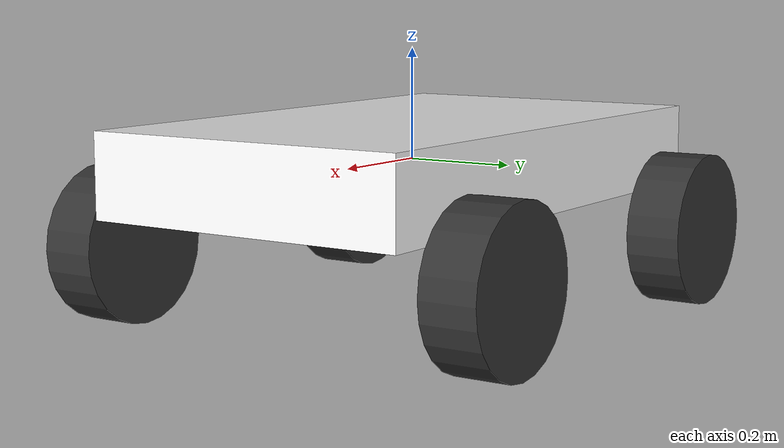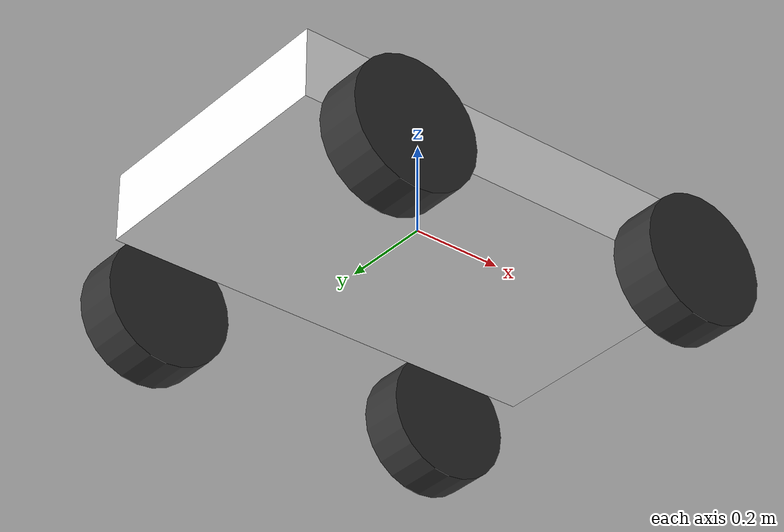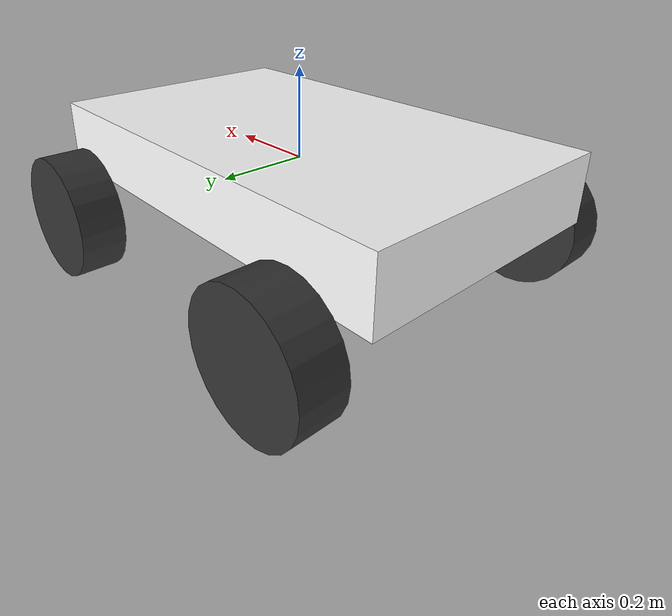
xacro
<?xml version="1.0"?>
<robot name="sam_bot" xmlns:xacro="http://ros.org/wiki/xacro">

  <!-- Includes -->
  <xacro:include filename="$(find hardware_navigation)/urdf/material.xacro" />
  <xacro:include filename="$(find hardware_navigation)/urdf/macros.xacro" />

  <!-- Base Properties -->
  <xacro:property name="base_width" value="0.6"/>
  <xacro:property name="base_length" value="1.0"/>
  <xacro:property name="base_height" value="0.15"/>
  <xacro:property name="base_mass" value="8"/>

  <!-- Wheel Properties -->
  <xacro:property name="wheel_radius" value="0.14"/>
  <xacro:property name="wheel_separation" value="0.6"/>
  <xacro:property name="wheel_width" value="0.1"/>
  <xacro:property name="wheel_mass" value="2"/>
  <xacro:property name="wheel_xoff" value="0.35"/>
  <xacro:property name="wheel_yoff" value="0.08"/>

  <!-- Robot Footprint -->
  <link name="base_footprint"/>

  <joint name="base_joint" type="fixed">
    <parent link="base_link"/>
    <child link="base_footprint"/>
    <origin xyz="0.0 0.0 ${-(wheel_radius + 0.06) + 0.005}" rpy="0 0 0"/>
  </joint>

  <!-- Robot Base -->
  <link name="base_link">
    <collision>
      <geometry>
        <box size="${base_length} ${base_width} ${base_height}"/>
      </geometry>
    </collision>
    <xacro:box_inertia m="${base_mass}" w="${base_width}" d="${base_length}" h="${base_height}"/>
    <visual>
      <geometry>
        <box size="${base_length} ${base_width} ${base_height}"/>
      </geometry>
      <material name="white">
        <color rgba="1.0 1.0 1.0 1.0"/>
      </material>
    </visual>
  </link>

  <!-- Mecanum Wheel Macro -->
  <xacro:macro name="wheel" params="prefix side x_reflect y_reflect">
    <link name="${prefix}${side}_wheel_link">
      <visual>
        <origin xyz="0 0 0" rpy="${pi/2} 0 0"/>
        <geometry>
          <cylinder radius="${wheel_radius}" length="${wheel_width}"/>
        </geometry>
        <material name="dark_gray">
          <color rgba="0.2 0.2 0.2 1.0"/>
        </material>
      </visual>

      <collision>
        <origin xyz="0 0 0" rpy="${pi/2} 0 0"/>
        <geometry>
          <cylinder radius="${wheel_radius}" length="${wheel_width}"/>
        </geometry>
      </collision>

      <inertial>
        <origin xyz="0 0 0" rpy="0 0 0"/>
        <mass value="${wheel_mass}"/>
        <inertia
          ixx="${(wheel_mass/12.0) * (3*wheel_radius*wheel_radius + wheel_width*wheel_width)}" ixy="0" ixz="0"
          iyy="${(wheel_mass/2.0) * (wheel_radius*wheel_radius)}" iyz="0"
          izz="${(wheel_mass/12.0) * (3*wheel_radius*wheel_radius + wheel_width*wheel_width)}"/>
      </inertial>
    </link>

    <joint name="${prefix}${side}_wheel_joint" type="continuous">
      <axis xyz="0 1 0"/>
      <parent link="base_link"/>
      <child link="${prefix}${side}_wheel_link"/>
      <origin xyz="${x_reflect * wheel_xoff} ${y_reflect * (wheel_separation / 2 + wheel_yoff)} ${-wheel_radius}" rpy="0 0 0"/>
    </joint>

    <gazebo reference="${prefix}${side}_wheel_link">
      <surface>
        <friction>
          <ode>
            <mu>1.0</mu>
            <mu2>0.0</mu2>
          </ode>
        </friction>
      </surface>
      <visual>
        <material>
          <ambient>0.2 0.2 0.2 1.0</ambient>
          <diffuse>0.2 0.2 0.2 1.0</diffuse>
          <specular>0.2 0.2 0.2 1.0</specular>
          <emissive>0.0 0.0 0.0 0.0</emissive>
        </material>
      </visual>
    </gazebo>
  </xacro:macro>

  <!-- Instantiate 4 Wheels -->
  <xacro:wheel prefix="" side="front_left"  x_reflect="1"  y_reflect="1"/>
  <xacro:wheel prefix="" side="front_right" x_reflect="1"  y_reflect="-1"/>
  <xacro:wheel prefix="" side="back_left"   x_reflect="-1" y_reflect="1"/>
  <xacro:wheel prefix="" side="back_right"  x_reflect="-1" y_reflect="-1"/>

</robot>

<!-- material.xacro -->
<robot>

  <material name="black">
    <color rgba="0.0 0.0 0.0 1.0"/>
  </material>

  <material name="white">
    <color rgba="1.0 1.0 1.0 1.0"/>
  </material>

  <material name="red">
    <color rgba="0.8 0.0 0.0 1.0"/>
  </material>

  <material name="blue">
    <color rgba="0.0 0.0 0.8 1.0"/>
  </material>

  <material name="green">
    <color rgba="0.0 0.8 0.0 1.0"/>
  </material>

  <material name="grey">
    <color rgba="0.5 0.5 0.5 1.0"/>
  </material>
</robot>

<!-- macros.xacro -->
<robot name="cart"
    xmlns:xacro="http://www.ros.org/wiki/xacro">

  <!-- Define inertial property macros  -->
  <xacro:macro name="box_inertia" params="m w h d">
    <inertial>
      <origin xyz="0 0 0" rpy="${pi/2} 0 ${pi/2}"/>
      <mass value="${m}"/>
      <inertia ixx="${(m/12) * (h*h + d*d)}" ixy="0.0" ixz="0.0" iyy="${(m/12) * (w*w + d*d)}" iyz="0.0" izz="${(m/12) * (w*w + h*h)}"/>
    </inertial>
  </xacro:macro>

  <xacro:macro name="cylinder_inertia" params="m r h">
    <inertial>
      <origin xyz="0 0 0" rpy="${pi/2} 0 0" />
      <mass value="${m}"/>
      <inertia ixx="${(m/12) * (3*r*r + h*h)}" ixy = "0" ixz = "0" iyy="${(m/12) * (3*r*r + h*h)}" iyz = "0" izz="${(m/2) * (r*r)}"/>
    </inertial>
  </xacro:macro>

  <xacro:macro name="sphere_inertia" params="m r">
    <inertial>
      <mass value="${m}"/>
      <inertia ixx="${(2/5) * m * (r*r)}" ixy="0.0" ixz="0.0" iyy="${(2/5) * m * (r*r)}" iyz="0.0" izz="${(2/5) * m * (r*r)}"/>
    </inertial>
  </xacro:macro>

</robot>
